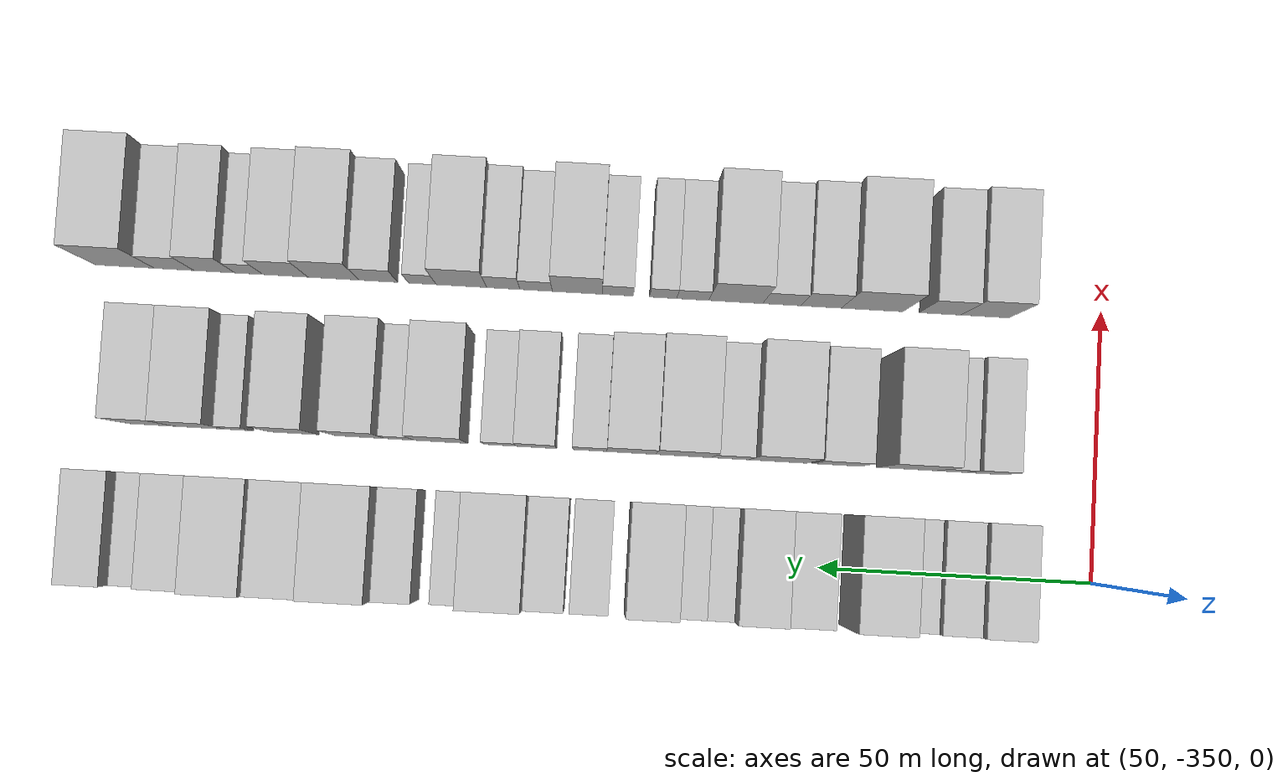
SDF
<sdf version="1.6">
 <world name="default">
  <model name="building_1">
   <static>1</static>
   <pose>50.0000 -331.6268 0 0.000000 0.000000 0.000000</pose>
   <link name="link">
    <pose>0 0 9.00 0 0 0</pose>
    <collision name="collision"><geometry><box><size>20.0000 8.7465 18.0000</size></box></geometry></collision>
    <visual name="visual">
     <cast_shadows>0</cast_shadows>
     <geometry><box><size>20.0000 8.7465 18.0000</size></box></geometry>
     <material>
      <script>
       <uri>model://HANNAS_wall/materials/scripts</uri>
       <uri>model://HANNAS_wall/materials/textures</uri>
       <name>vrc/HANNAS_wall</name>
      </script>
     </material>
    </visual>
   </link>
  </model>
  <model name="building_2">
   <static>1</static>
   <pose>50.0000 -323.7669 0 0.000000 0.000000 0.000000</pose>
   <link name="link">
    <pose>0 0 7.50 0 0 0</pose>
    <collision name="collision"><geometry><box><size>20.0000 6.9732 15.0000</size></box></geometry></collision>
    <visual name="visual">
     <cast_shadows>0</cast_shadows>
     <geometry><box><size>20.0000 6.9732 15.0000</size></box></geometry>
     <material>
      <script>
       <uri>model://HANNAS_wall/materials/scripts</uri>
       <uri>model://HANNAS_wall/materials/textures</uri>
       <name>vrc/HANNAS_wall</name>
      </script>
     </material>
    </visual>
   </link>
  </model>
  <model name="building_3">
   <static>1</static>
   <pose>50.0000 -317.8753 0 0.000000 0.000000 0.000000</pose>
   <link name="link">
    <pose>0 0 6.00 0 0 0</pose>
    <collision name="collision"><geometry><box><size>20.0000 4.8100 12.0000</size></box></geometry></collision>
    <visual name="visual">
     <cast_shadows>0</cast_shadows>
     <geometry><box><size>20.0000 4.8100 12.0000</size></box></geometry>
     <material>
      <script>
       <uri>model://HANNAS_wall/materials/scripts</uri>
       <uri>model://HANNAS_wall/materials/textures</uri>
       <name>vrc/HANNAS_wall</name>
      </script>
     </material>
    </visual>
   </link>
  </model>
  <model name="building_4">
   <static>1</static>
   <pose>50.0000 -309.3967 0 0.000000 0.000000 0.000000</pose>
   <link name="link">
    <pose>0 0 12.00 0 0 0</pose>
    <collision name="collision"><geometry><box><size>20.0000 10.1470 24.0000</size></box></geometry></collision>
    <visual name="visual">
     <cast_shadows>0</cast_shadows>
     <geometry><box><size>20.0000 10.1470 24.0000</size></box></geometry>
     <material>
      <script>
       <uri>model://HANNAS_wall/materials/scripts</uri>
       <uri>model://HANNAS_wall/materials/textures</uri>
       <name>vrc/HANNAS_wall</name>
      </script>
     </material>
    </visual>
   </link>
  </model>
  <model name="building_5">
   <static>1</static>
   <pose>50.0000 -297.1925 0 0.000000 0.000000 0.000000</pose>
   <link name="link">
    <pose>0 0 9.00 0 0 0</pose>
    <collision name="collision"><geometry><box><size>20.0000 8.2614 18.0000</size></box></geometry></collision>
    <visual name="visual">
     <cast_shadows>0</cast_shadows>
     <geometry><box><size>20.0000 8.2614 18.0000</size></box></geometry>
     <material>
      <script>
       <uri>model://HANNAS_wall/materials/scripts</uri>
       <uri>model://HANNAS_wall/materials/textures</uri>
       <name>vrc/HANNAS_wall</name>
      </script>
     </material>
    </visual>
   </link>
  </model>
  <model name="building_6">
   <static>1</static>
   <pose>50.0000 -288.6831 0 0.000000 0.000000 0.000000</pose>
   <link name="link">
    <pose>0 0 10.50 0 0 0</pose>
    <collision name="collision"><geometry><box><size>20.0000 8.7574 21.0000</size></box></geometry></collision>
    <visual name="visual">
     <cast_shadows>0</cast_shadows>
     <geometry><box><size>20.0000 8.7574 21.0000</size></box></geometry>
     <material>
      <script>
       <uri>model://HANNAS_wall/materials/scripts</uri>
       <uri>model://HANNAS_wall/materials/textures</uri>
       <name>vrc/HANNAS_wall</name>
      </script>
     </material>
    </visual>
   </link>
  </model>
  <model name="building_7">
   <static>1</static>
   <pose>50.0000 -281.9020 0 0.000000 0.000000 0.000000</pose>
   <link name="link">
    <pose>0 0 6.00 0 0 0</pose>
    <collision name="collision"><geometry><box><size>20.0000 4.8047 12.0000</size></box></geometry></collision>
    <visual name="visual">
     <cast_shadows>0</cast_shadows>
     <geometry><box><size>20.0000 4.8047 12.0000</size></box></geometry>
     <material>
      <script>
       <uri>model://HANNAS_wall/materials/scripts</uri>
       <uri>model://HANNAS_wall/materials/textures</uri>
       <name>vrc/HANNAS_wall</name>
      </script>
     </material>
    </visual>
   </link>
  </model>
  <model name="building_8">
   <static>1</static>
   <pose>50.0000 -276.8866 0 0.000000 0.000000 0.000000</pose>
   <link name="link">
    <pose>0 0 6.00 0 0 0</pose>
    <collision name="collision"><geometry><box><size>20.0000 5.2261 12.0000</size></box></geometry></collision>
    <visual name="visual">
     <cast_shadows>0</cast_shadows>
     <geometry><box><size>20.0000 5.2261 12.0000</size></box></geometry>
     <material>
      <script>
       <uri>model://HANNAS_wall/materials/scripts</uri>
       <uri>model://HANNAS_wall/materials/textures</uri>
       <name>vrc/HANNAS_wall</name>
      </script>
     </material>
    </visual>
   </link>
  </model>
  <model name="building_9">
   <static>1</static>
   <pose>50.0000 -269.6459 0 0.000000 0.000000 0.000000</pose>
   <link name="link">
    <pose>0 0 10.50 0 0 0</pose>
    <collision name="collision"><geometry><box><size>20.0000 9.2554 21.0000</size></box></geometry></collision>
    <visual name="visual">
     <cast_shadows>0</cast_shadows>
     <geometry><box><size>20.0000 9.2554 21.0000</size></box></geometry>
     <material>
      <script>
       <uri>model://HANNAS_wall/materials/scripts</uri>
       <uri>model://HANNAS_wall/materials/textures</uri>
       <name>vrc/HANNAS_wall</name>
      </script>
     </material>
    </visual>
   </link>
  </model>
  <model name="building_10">
   <static>1</static>
   <pose>50.0000 -258.6013 0 0.000000 0.000000 0.000000</pose>
   <link name="link">
    <pose>0 0 7.50 0 0 0</pose>
    <collision name="collision"><geometry><box><size>20.0000 6.8338 15.0000</size></box></geometry></collision>
    <visual name="visual">
     <cast_shadows>0</cast_shadows>
     <geometry><box><size>20.0000 6.8338 15.0000</size></box></geometry>
     <material>
      <script>
       <uri>model://HANNAS_wall/materials/scripts</uri>
       <uri>model://HANNAS_wall/materials/textures</uri>
       <name>vrc/HANNAS_wall</name>
      </script>
     </material>
    </visual>
   </link>
  </model>
  <model name="building_11">
   <static>1</static>
   <pose>50.0000 -250.5868 0 0.000000 0.000000 0.000000</pose>
   <link name="link">
    <pose>0 0 7.50 0 0 0</pose>
    <collision name="collision"><geometry><box><size>20.0000 7.1953 15.0000</size></box></geometry></collision>
    <visual name="visual">
     <cast_shadows>0</cast_shadows>
     <geometry><box><size>20.0000 7.1953 15.0000</size></box></geometry>
     <material>
      <script>
       <uri>model://HANNAS_wall/materials/scripts</uri>
       <uri>model://HANNAS_wall/materials/textures</uri>
       <name>vrc/HANNAS_wall</name>
      </script>
     </material>
    </visual>
   </link>
  </model>
  <model name="building_12">
   <static>1</static>
   <pose>50.0000 -241.3926 0 0.000000 0.000000 0.000000</pose>
   <link name="link">
    <pose>0 0 12.00 0 0 0</pose>
    <collision name="collision"><geometry><box><size>20.0000 11.1932 24.0000</size></box></geometry></collision>
    <visual name="visual">
     <cast_shadows>0</cast_shadows>
     <geometry><box><size>20.0000 11.1932 24.0000</size></box></geometry>
     <material>
      <script>
       <uri>model://HANNAS_wall/materials/scripts</uri>
       <uri>model://HANNAS_wall/materials/textures</uri>
       <name>vrc/HANNAS_wall</name>
      </script>
     </material>
    </visual>
   </link>
  </model>
  <model name="building_13">
   <static>1</static>
   <pose>50.0000 -233.1363 0 0.000000 0.000000 0.000000</pose>
   <link name="link">
    <pose>0 0 6.00 0 0 0</pose>
    <collision name="collision"><geometry><box><size>20.0000 5.3193 12.0000</size></box></geometry></collision>
    <visual name="visual">
     <cast_shadows>0</cast_shadows>
     <geometry><box><size>20.0000 5.3193 12.0000</size></box></geometry>
     <material>
      <script>
       <uri>model://HANNAS_wall/materials/scripts</uri>
       <uri>model://HANNAS_wall/materials/textures</uri>
       <name>vrc/HANNAS_wall</name>
      </script>
     </material>
    </visual>
   </link>
  </model>
  <model name="building_14">
   <static>1</static>
   <pose>50.0000 -223.9610 0 0.000000 0.000000 0.000000</pose>
   <link name="link">
    <pose>0 0 7.50 0 0 0</pose>
    <collision name="collision"><geometry><box><size>20.0000 7.0312 15.0000</size></box></geometry></collision>
    <visual name="visual">
     <cast_shadows>0</cast_shadows>
     <geometry><box><size>20.0000 7.0312 15.0000</size></box></geometry>
     <material>
      <script>
       <uri>model://HANNAS_wall/materials/scripts</uri>
       <uri>model://HANNAS_wall/materials/textures</uri>
       <name>vrc/HANNAS_wall</name>
      </script>
     </material>
    </visual>
   </link>
  </model>
  <model name="building_15">
   <static>1</static>
   <pose>50.0000 -214.6187 0 0.000000 0.000000 0.000000</pose>
   <link name="link">
    <pose>0 0 12.00 0 0 0</pose>
    <collision name="collision"><geometry><box><size>20.0000 11.6534 24.0000</size></box></geometry></collision>
    <visual name="visual">
     <cast_shadows>0</cast_shadows>
     <geometry><box><size>20.0000 11.6534 24.0000</size></box></geometry>
     <material>
      <script>
       <uri>model://HANNAS_wall/materials/scripts</uri>
       <uri>model://HANNAS_wall/materials/textures</uri>
       <name>vrc/HANNAS_wall</name>
      </script>
     </material>
    </visual>
   </link>
  </model>
  <model name="building_16">
   <static>1</static>
   <pose>50.0000 -204.0040 0 0.000000 0.000000 0.000000</pose>
   <link name="link">
    <pose>0 0 10.50 0 0 0</pose>
    <collision name="collision"><geometry><box><size>20.0000 9.5760 21.0000</size></box></geometry></collision>
    <visual name="visual">
     <cast_shadows>0</cast_shadows>
     <geometry><box><size>20.0000 9.5760 21.0000</size></box></geometry>
     <material>
      <script>
       <uri>model://HANNAS_wall/materials/scripts</uri>
       <uri>model://HANNAS_wall/materials/textures</uri>
       <name>vrc/HANNAS_wall</name>
      </script>
     </material>
    </visual>
   </link>
  </model>
  <model name="building_17">
   <static>1</static>
   <pose>50.0000 -194.0085 0 0.000000 0.000000 0.000000</pose>
   <link name="link">
    <pose>0 0 12.00 0 0 0</pose>
    <collision name="collision"><geometry><box><size>20.0000 10.4152 24.0000</size></box></geometry></collision>
    <visual name="visual">
     <cast_shadows>0</cast_shadows>
     <geometry><box><size>20.0000 10.4152 24.0000</size></box></geometry>
     <material>
      <script>
       <uri>model://HANNAS_wall/materials/scripts</uri>
       <uri>model://HANNAS_wall/materials/textures</uri>
       <name>vrc/HANNAS_wall</name>
      </script>
     </material>
    </visual>
   </link>
  </model>
  <model name="building_18">
   <static>1</static>
   <pose>50.0000 -183.7888 0 0.000000 0.000000 0.000000</pose>
   <link name="link">
    <pose>0 0 9.00 0 0 0</pose>
    <collision name="collision"><geometry><box><size>20.0000 8.0241 18.0000</size></box></geometry></collision>
    <visual name="visual">
     <cast_shadows>0</cast_shadows>
     <geometry><box><size>20.0000 8.0241 18.0000</size></box></geometry>
     <material>
      <script>
       <uri>model://HANNAS_wall/materials/scripts</uri>
       <uri>model://HANNAS_wall/materials/textures</uri>
       <name>vrc/HANNAS_wall</name>
      </script>
     </material>
    </visual>
   </link>
  </model>
  <model name="building_19">
   <static>1</static>
   <pose>50.0000 -176.8450 0 0.000000 0.000000 0.000000</pose>
   <link name="link">
    <pose>0 0 6.00 0 0 0</pose>
    <collision name="collision"><geometry><box><size>20.0000 5.8635 12.0000</size></box></geometry></collision>
    <visual name="visual">
     <cast_shadows>0</cast_shadows>
     <geometry><box><size>20.0000 5.8635 12.0000</size></box></geometry>
     <material>
      <script>
       <uri>model://HANNAS_wall/materials/scripts</uri>
       <uri>model://HANNAS_wall/materials/textures</uri>
       <name>vrc/HANNAS_wall</name>
      </script>
     </material>
    </visual>
   </link>
  </model>
  <model name="building_20">
   <static>1</static>
   <pose>50.0000 -169.9643 0 0.000000 0.000000 0.000000</pose>
   <link name="link">
    <pose>0 0 9.00 0 0 0</pose>
    <collision name="collision"><geometry><box><size>20.0000 7.8979 18.0000</size></box></geometry></collision>
    <visual name="visual">
     <cast_shadows>0</cast_shadows>
     <geometry><box><size>20.0000 7.8979 18.0000</size></box></geometry>
     <material>
      <script>
       <uri>model://HANNAS_wall/materials/scripts</uri>
       <uri>model://HANNAS_wall/materials/textures</uri>
       <name>vrc/HANNAS_wall</name>
      </script>
     </material>
    </visual>
   </link>
  </model>
  <model name="building_78">
   <static>1</static>
   <pose>79.0000 -329.5668 0 0.000000 0.000000 0.000000</pose>
   <link name="link">
    <pose>0 0 7.50 0 0 0</pose>
    <collision name="collision"><geometry><box><size>20.0000 6.8664 15.0000</size></box></geometry></collision>
    <visual name="visual">
     <cast_shadows>0</cast_shadows>
     <geometry><box><size>20.0000 6.8664 15.0000</size></box></geometry>
     <material>
      <script>
       <uri>model://HANNAS_wall/materials/scripts</uri>
       <uri>model://HANNAS_wall/materials/textures</uri>
       <name>vrc/HANNAS_wall</name>
      </script>
     </material>
    </visual>
   </link>
  </model>
  <model name="building_79">
   <static>1</static>
   <pose>79.0000 -323.4280 0 0.000000 0.000000 0.000000</pose>
   <link name="link">
    <pose>0 0 6.00 0 0 0</pose>
    <collision name="collision"><geometry><box><size>20.0000 5.4112 12.0000</size></box></geometry></collision>
    <visual name="visual">
     <cast_shadows>0</cast_shadows>
     <geometry><box><size>20.0000 5.4112 12.0000</size></box></geometry>
     <material>
      <script>
       <uri>model://HANNAS_wall/materials/scripts</uri>
       <uri>model://HANNAS_wall/materials/textures</uri>
       <name>vrc/HANNAS_wall</name>
      </script>
     </material>
    </visual>
   </link>
  </model>
  <model name="building_80">
   <static>1</static>
   <pose>79.0000 -315.2434 0 0.000000 0.000000 0.000000</pose>
   <link name="link">
    <pose>0 0 12.00 0 0 0</pose>
    <collision name="collision"><geometry><box><size>20.0000 10.9579 24.0000</size></box></geometry></collision>
    <visual name="visual">
     <cast_shadows>0</cast_shadows>
     <geometry><box><size>20.0000 10.9579 24.0000</size></box></geometry>
     <material>
      <script>
       <uri>model://HANNAS_wall/materials/scripts</uri>
       <uri>model://HANNAS_wall/materials/textures</uri>
       <name>vrc/HANNAS_wall</name>
      </script>
     </material>
    </visual>
   </link>
  </model>
  <model name="building_81">
   <static>1</static>
   <pose>79.0000 -302.3818 0 0.000000 0.000000 0.000000</pose>
   <link name="link">
    <pose>0 0 9.00 0 0 0</pose>
    <collision name="collision"><geometry><box><size>20.0000 8.7654 18.0000</size></box></geometry></collision>
    <visual name="visual">
     <cast_shadows>0</cast_shadows>
     <geometry><box><size>20.0000 8.7654 18.0000</size></box></geometry>
     <material>
      <script>
       <uri>model://HANNAS_wall/materials/scripts</uri>
       <uri>model://HANNAS_wall/materials/textures</uri>
       <name>vrc/HANNAS_wall</name>
      </script>
     </material>
    </visual>
   </link>
  </model>
  <model name="building_82">
   <static>1</static>
   <pose>79.0000 -291.6506 0 0.000000 0.000000 0.000000</pose>
   <link name="link">
    <pose>0 0 12.00 0 0 0</pose>
    <collision name="collision"><geometry><box><size>20.0000 10.6968 24.0000</size></box></geometry></collision>
    <visual name="visual">
     <cast_shadows>0</cast_shadows>
     <geometry><box><size>20.0000 10.6968 24.0000</size></box></geometry>
     <material>
      <script>
       <uri>model://HANNAS_wall/materials/scripts</uri>
       <uri>model://HANNAS_wall/materials/textures</uri>
       <name>vrc/HANNAS_wall</name>
      </script>
     </material>
    </visual>
   </link>
  </model>
  <model name="building_83">
   <static>1</static>
   <pose>79.0000 -282.8575 0 0.000000 0.000000 0.000000</pose>
   <link name="link">
    <pose>0 0 7.50 0 0 0</pose>
    <collision name="collision"><geometry><box><size>20.0000 6.8894 15.0000</size></box></geometry></collision>
    <visual name="visual">
     <cast_shadows>0</cast_shadows>
     <geometry><box><size>20.0000 6.8894 15.0000</size></box></geometry>
     <material>
      <script>
       <uri>model://HANNAS_wall/materials/scripts</uri>
       <uri>model://HANNAS_wall/materials/textures</uri>
       <name>vrc/HANNAS_wall</name>
      </script>
     </material>
    </visual>
   </link>
  </model>
  <model name="building_84">
   <static>1</static>
   <pose>79.0000 -274.2752 0 0.000000 0.000000 0.000000</pose>
   <link name="link">
    <pose>0 0 12.00 0 0 0</pose>
    <collision name="collision"><geometry><box><size>20.0000 10.2752 24.0000</size></box></geometry></collision>
    <visual name="visual">
     <cast_shadows>0</cast_shadows>
     <geometry><box><size>20.0000 10.2752 24.0000</size></box></geometry>
     <material>
      <script>
       <uri>model://HANNAS_wall/materials/scripts</uri>
       <uri>model://HANNAS_wall/materials/textures</uri>
       <name>vrc/HANNAS_wall</name>
      </script>
     </material>
    </visual>
   </link>
  </model>
  <model name="building_85">
   <static>1</static>
   <pose>79.0000 -264.6732 0 0.000000 0.000000 0.000000</pose>
   <link name="link">
    <pose>0 0 10.50 0 0 0</pose>
    <collision name="collision"><geometry><box><size>20.0000 8.9286 21.0000</size></box></geometry></collision>
    <visual name="visual">
     <cast_shadows>0</cast_shadows>
     <geometry><box><size>20.0000 8.9286 21.0000</size></box></geometry>
     <material>
      <script>
       <uri>model://HANNAS_wall/materials/scripts</uri>
       <uri>model://HANNAS_wall/materials/textures</uri>
       <name>vrc/HANNAS_wall</name>
      </script>
     </material>
    </visual>
   </link>
  </model>
  <model name="building_86">
   <static>1</static>
   <pose>79.0000 -257.1080 0 0.000000 0.000000 0.000000</pose>
   <link name="link">
    <pose>0 0 7.50 0 0 0</pose>
    <collision name="collision"><geometry><box><size>20.0000 6.2018 15.0000</size></box></geometry></collision>
    <visual name="visual">
     <cast_shadows>0</cast_shadows>
     <geometry><box><size>20.0000 6.2018 15.0000</size></box></geometry>
     <material>
      <script>
       <uri>model://HANNAS_wall/materials/scripts</uri>
       <uri>model://HANNAS_wall/materials/textures</uri>
       <name>vrc/HANNAS_wall</name>
      </script>
     </material>
    </visual>
   </link>
  </model>
  <model name="building_87">
   <static>1</static>
   <pose>79.0000 -247.3240 0 0.000000 0.000000 0.000000</pose>
   <link name="link">
    <pose>0 0 7.50 0 0 0</pose>
    <collision name="collision"><geometry><box><size>20.0000 7.3662 15.0000</size></box></geometry></collision>
    <visual name="visual">
     <cast_shadows>0</cast_shadows>
     <geometry><box><size>20.0000 7.3662 15.0000</size></box></geometry>
     <material>
      <script>
       <uri>model://HANNAS_wall/materials/scripts</uri>
       <uri>model://HANNAS_wall/materials/textures</uri>
       <name>vrc/HANNAS_wall</name>
      </script>
     </material>
    </visual>
   </link>
  </model>
  <model name="building_88">
   <static>1</static>
   <pose>79.0000 -240.6710 0 0.000000 0.000000 0.000000</pose>
   <link name="link">
    <pose>0 0 6.00 0 0 0</pose>
    <collision name="collision"><geometry><box><size>20.0000 5.9400 12.0000</size></box></geometry></collision>
    <visual name="visual">
     <cast_shadows>0</cast_shadows>
     <geometry><box><size>20.0000 5.9400 12.0000</size></box></geometry>
     <material>
      <script>
       <uri>model://HANNAS_wall/materials/scripts</uri>
       <uri>model://HANNAS_wall/materials/textures</uri>
       <name>vrc/HANNAS_wall</name>
      </script>
     </material>
    </visual>
   </link>
  </model>
  <model name="building_89">
   <static>1</static>
   <pose>79.0000 -229.8145 0 0.000000 0.000000 0.000000</pose>
   <link name="link">
    <pose>0 0 10.50 0 0 0</pose>
    <collision name="collision"><geometry><box><size>20.0000 9.7729 21.0000</size></box></geometry></collision>
    <visual name="visual">
     <cast_shadows>0</cast_shadows>
     <geometry><box><size>20.0000 9.7729 21.0000</size></box></geometry>
     <material>
      <script>
       <uri>model://HANNAS_wall/materials/scripts</uri>
       <uri>model://HANNAS_wall/materials/textures</uri>
       <name>vrc/HANNAS_wall</name>
      </script>
     </material>
    </visual>
   </link>
  </model>
  <model name="building_90">
   <static>1</static>
   <pose>79.0000 -222.2005 0 0.000000 0.000000 0.000000</pose>
   <link name="link">
    <pose>0 0 6.00 0 0 0</pose>
    <collision name="collision"><geometry><box><size>20.0000 5.4551 12.0000</size></box></geometry></collision>
    <visual name="visual">
     <cast_shadows>0</cast_shadows>
     <geometry><box><size>20.0000 5.4551 12.0000</size></box></geometry>
     <material>
      <script>
       <uri>model://HANNAS_wall/materials/scripts</uri>
       <uri>model://HANNAS_wall/materials/textures</uri>
       <name>vrc/HANNAS_wall</name>
      </script>
     </material>
    </visual>
   </link>
  </model>
  <model name="building_91">
   <static>1</static>
   <pose>79.0000 -214.8779 0 0.000000 0.000000 0.000000</pose>
   <link name="link">
    <pose>0 0 10.50 0 0 0</pose>
    <collision name="collision"><geometry><box><size>20.0000 9.1901 21.0000</size></box></geometry></collision>
    <visual name="visual">
     <cast_shadows>0</cast_shadows>
     <geometry><box><size>20.0000 9.1901 21.0000</size></box></geometry>
     <material>
      <script>
       <uri>model://HANNAS_wall/materials/scripts</uri>
       <uri>model://HANNAS_wall/materials/textures</uri>
       <name>vrc/HANNAS_wall</name>
      </script>
     </material>
    </visual>
   </link>
  </model>
  <model name="building_92">
   <static>1</static>
   <pose>79.0000 -202.7307 0 0.000000 0.000000 0.000000</pose>
   <link name="link">
    <pose>0 0 10.50 0 0 0</pose>
    <collision name="collision"><geometry><box><size>20.0000 9.1043 21.0000</size></box></geometry></collision>
    <visual name="visual">
     <cast_shadows>0</cast_shadows>
     <geometry><box><size>20.0000 9.1043 21.0000</size></box></geometry>
     <material>
      <script>
       <uri>model://HANNAS_wall/materials/scripts</uri>
       <uri>model://HANNAS_wall/materials/textures</uri>
       <name>vrc/HANNAS_wall</name>
      </script>
     </material>
    </visual>
   </link>
  </model>
  <model name="building_93">
   <static>1</static>
   <pose>79.0000 -192.7432 0 0.000000 0.000000 0.000000</pose>
   <link name="link">
    <pose>0 0 6.00 0 0 0</pose>
    <collision name="collision"><geometry><box><size>20.0000 4.8708 12.0000</size></box></geometry></collision>
    <visual name="visual">
     <cast_shadows>0</cast_shadows>
     <geometry><box><size>20.0000 4.8708 12.0000</size></box></geometry>
     <material>
      <script>
       <uri>model://HANNAS_wall/materials/scripts</uri>
       <uri>model://HANNAS_wall/materials/textures</uri>
       <name>vrc/HANNAS_wall</name>
      </script>
     </material>
    </visual>
   </link>
  </model>
  <model name="building_94">
   <static>1</static>
   <pose>79.0000 -185.5527 0 0.000000 0.000000 0.000000</pose>
   <link name="link">
    <pose>0 0 10.50 0 0 0</pose>
    <collision name="collision"><geometry><box><size>20.0000 9.5102 21.0000</size></box></geometry></collision>
    <visual name="visual">
     <cast_shadows>0</cast_shadows>
     <geometry><box><size>20.0000 9.5102 21.0000</size></box></geometry>
     <material>
      <script>
       <uri>model://HANNAS_wall/materials/scripts</uri>
       <uri>model://HANNAS_wall/materials/textures</uri>
       <name>vrc/HANNAS_wall</name>
      </script>
     </material>
    </visual>
   </link>
  </model>
  <model name="building_95">
   <static>1</static>
   <pose>79.0000 -176.4970 0 0.000000 0.000000 0.000000</pose>
   <link name="link">
    <pose>0 0 10.50 0 0 0</pose>
    <collision name="collision"><geometry><box><size>20.0000 8.6012 21.0000</size></box></geometry></collision>
    <visual name="visual">
     <cast_shadows>0</cast_shadows>
     <geometry><box><size>20.0000 8.6012 21.0000</size></box></geometry>
     <material>
      <script>
       <uri>model://HANNAS_wall/materials/scripts</uri>
       <uri>model://HANNAS_wall/materials/textures</uri>
       <name>vrc/HANNAS_wall</name>
      </script>
     </material>
    </visual>
   </link>
  </model>
  <model name="building_154">
   <static>1</static>
   <pose>108.0000 -328.5425 0 0.000000 0.000000 0.000000</pose>
   <link name="link">
    <pose>0 0 10.50 0 0 0</pose>
    <collision name="collision"><geometry><box><size>20.0000 8.9149 21.0000</size></box></geometry></collision>
    <visual name="visual">
     <cast_shadows>0</cast_shadows>
     <geometry><box><size>20.0000 8.9149 21.0000</size></box></geometry>
     <material>
      <script>
       <uri>model://HANNAS_wall/materials/scripts</uri>
       <uri>model://HANNAS_wall/materials/textures</uri>
       <name>vrc/HANNAS_wall</name>
      </script>
     </material>
    </visual>
   </link>
  </model>
  <model name="building_155">
   <static>1</static>
   <pose>108.0000 -320.2434 0 0.000000 0.000000 0.000000</pose>
   <link name="link">
    <pose>0 0 9.00 0 0 0</pose>
    <collision name="collision"><geometry><box><size>20.0000 7.6833 18.0000</size></box></geometry></collision>
    <visual name="visual">
     <cast_shadows>0</cast_shadows>
     <geometry><box><size>20.0000 7.6833 18.0000</size></box></geometry>
     <material>
      <script>
       <uri>model://HANNAS_wall/materials/scripts</uri>
       <uri>model://HANNAS_wall/materials/textures</uri>
       <name>vrc/HANNAS_wall</name>
      </script>
     </material>
    </visual>
   </link>
  </model>
  <model name="building_156">
   <static>1</static>
   <pose>108.0000 -307.6872 0 0.000000 0.000000 0.000000</pose>
   <link name="link">
    <pose>0 0 12.00 0 0 0</pose>
    <collision name="collision"><geometry><box><size>20.0000 11.4290 24.0000</size></box></geometry></collision>
    <visual name="visual">
     <cast_shadows>0</cast_shadows>
     <geometry><box><size>20.0000 11.4290 24.0000</size></box></geometry>
     <material>
      <script>
       <uri>model://HANNAS_wall/materials/scripts</uri>
       <uri>model://HANNAS_wall/materials/textures</uri>
       <name>vrc/HANNAS_wall</name>
      </script>
     </material>
    </visual>
   </link>
  </model>
  <model name="building_157">
   <static>1</static>
   <pose>108.0000 -298.1848 0 0.000000 0.000000 0.000000</pose>
   <link name="link">
    <pose>0 0 9.00 0 0 0</pose>
    <collision name="collision"><geometry><box><size>20.0000 7.5759 18.0000</size></box></geometry></collision>
    <visual name="visual">
     <cast_shadows>0</cast_shadows>
     <geometry><box><size>20.0000 7.5759 18.0000</size></box></geometry>
     <material>
      <script>
       <uri>model://HANNAS_wall/materials/scripts</uri>
       <uri>model://HANNAS_wall/materials/textures</uri>
       <name>vrc/HANNAS_wall</name>
      </script>
     </material>
    </visual>
   </link>
  </model>
  <model name="building_158">
   <static>1</static>
   <pose>108.0000 -290.8960 0 0.000000 0.000000 0.000000</pose>
   <link name="link">
    <pose>0 0 7.50 0 0 0</pose>
    <collision name="collision"><geometry><box><size>20.0000 7.0016 15.0000</size></box></geometry></collision>
    <visual name="visual">
     <cast_shadows>0</cast_shadows>
     <geometry><box><size>20.0000 7.0016 15.0000</size></box></geometry>
     <material>
      <script>
       <uri>model://HANNAS_wall/materials/scripts</uri>
       <uri>model://HANNAS_wall/materials/textures</uri>
       <name>vrc/HANNAS_wall</name>
      </script>
     </material>
    </visual>
   </link>
  </model>
  <model name="building_159">
   <static>1</static>
   <pose>108.0000 -282.3847 0 0.000000 0.000000 0.000000</pose>
   <link name="link">
    <pose>0 0 12.00 0 0 0</pose>
    <collision name="collision"><geometry><box><size>20.0000 10.0210 24.0000</size></box></geometry></collision>
    <visual name="visual">
     <cast_shadows>0</cast_shadows>
     <geometry><box><size>20.0000 10.0210 24.0000</size></box></geometry>
     <material>
      <script>
       <uri>model://HANNAS_wall/materials/scripts</uri>
       <uri>model://HANNAS_wall/materials/textures</uri>
       <name>vrc/HANNAS_wall</name>
      </script>
     </material>
    </visual>
   </link>
  </model>
  <model name="building_160">
   <static>1</static>
   <pose>108.0000 -274.4052 0 0.000000 0.000000 0.000000</pose>
   <link name="link">
    <pose>0 0 6.00 0 0 0</pose>
    <collision name="collision"><geometry><box><size>20.0000 5.9381 12.0000</size></box></geometry></collision>
    <visual name="visual">
     <cast_shadows>0</cast_shadows>
     <geometry><box><size>20.0000 5.9381 12.0000</size></box></geometry>
     <material>
      <script>
       <uri>model://HANNAS_wall/materials/scripts</uri>
       <uri>model://HANNAS_wall/materials/textures</uri>
       <name>vrc/HANNAS_wall</name>
      </script>
     </material>
    </visual>
   </link>
  </model>
  <model name="building_161">
   <static>1</static>
   <pose>108.0000 -268.9296 0 0.000000 0.000000 0.000000</pose>
   <link name="link">
    <pose>0 0 6.00 0 0 0</pose>
    <collision name="collision"><geometry><box><size>20.0000 5.0131 12.0000</size></box></geometry></collision>
    <visual name="visual">
     <cast_shadows>0</cast_shadows>
     <geometry><box><size>20.0000 5.0131 12.0000</size></box></geometry>
     <material>
      <script>
       <uri>model://HANNAS_wall/materials/scripts</uri>
       <uri>model://HANNAS_wall/materials/textures</uri>
       <name>vrc/HANNAS_wall</name>
      </script>
     </material>
    </visual>
   </link>
  </model>
  <model name="building_162">
   <static>1</static>
   <pose>108.0000 -260.5807 0 0.000000 0.000000 0.000000</pose>
   <link name="link">
    <pose>0 0 6.00 0 0 0</pose>
    <collision name="collision"><geometry><box><size>20.0000 5.6847 12.0000</size></box></geometry></collision>
    <visual name="visual">
     <cast_shadows>0</cast_shadows>
     <geometry><box><size>20.0000 5.6847 12.0000</size></box></geometry>
     <material>
      <script>
       <uri>model://HANNAS_wall/materials/scripts</uri>
       <uri>model://HANNAS_wall/materials/textures</uri>
       <name>vrc/HANNAS_wall</name>
      </script>
     </material>
    </visual>
   </link>
  </model>
  <model name="building_163">
   <static>1</static>
   <pose>108.0000 -253.0854 0 0.000000 0.000000 0.000000</pose>
   <link name="link">
    <pose>0 0 10.50 0 0 0</pose>
    <collision name="collision"><geometry><box><size>20.0000 9.3058 21.0000</size></box></geometry></collision>
    <visual name="visual">
     <cast_shadows>0</cast_shadows>
     <geometry><box><size>20.0000 9.3058 21.0000</size></box></geometry>
     <material>
      <script>
       <uri>model://HANNAS_wall/materials/scripts</uri>
       <uri>model://HANNAS_wall/materials/textures</uri>
       <name>vrc/HANNAS_wall</name>
      </script>
     </material>
    </visual>
   </link>
  </model>
  <model name="building_164">
   <static>1</static>
   <pose>108.0000 -245.4428 0 0.000000 0.000000 0.000000</pose>
   <link name="link">
    <pose>0 0 6.00 0 0 0</pose>
    <collision name="collision"><geometry><box><size>20.0000 5.9792 12.0000</size></box></geometry></collision>
    <visual name="visual">
     <cast_shadows>0</cast_shadows>
     <geometry><box><size>20.0000 5.9792 12.0000</size></box></geometry>
     <material>
      <script>
       <uri>model://HANNAS_wall/materials/scripts</uri>
       <uri>model://HANNAS_wall/materials/textures</uri>
       <name>vrc/HANNAS_wall</name>
      </script>
     </material>
    </visual>
   </link>
  </model>
  <model name="building_165">
   <static>1</static>
   <pose>108.0000 -239.3814 0 0.000000 0.000000 0.000000</pose>
   <link name="link">
    <pose>0 0 7.50 0 0 0</pose>
    <collision name="collision"><geometry><box><size>20.0000 6.1436 15.0000</size></box></geometry></collision>
    <visual name="visual">
     <cast_shadows>0</cast_shadows>
     <geometry><box><size>20.0000 6.1436 15.0000</size></box></geometry>
     <material>
      <script>
       <uri>model://HANNAS_wall/materials/scripts</uri>
       <uri>model://HANNAS_wall/materials/textures</uri>
       <name>vrc/HANNAS_wall</name>
      </script>
     </material>
    </visual>
   </link>
  </model>
  <model name="building_166">
   <static>1</static>
   <pose>108.0000 -231.6222 0 0.000000 0.000000 0.000000</pose>
   <link name="link">
    <pose>0 0 10.50 0 0 0</pose>
    <collision name="collision"><geometry><box><size>20.0000 9.3748 21.0000</size></box></geometry></collision>
    <visual name="visual">
     <cast_shadows>0</cast_shadows>
     <geometry><box><size>20.0000 9.3748 21.0000</size></box></geometry>
     <material>
      <script>
       <uri>model://HANNAS_wall/materials/scripts</uri>
       <uri>model://HANNAS_wall/materials/textures</uri>
       <name>vrc/HANNAS_wall</name>
      </script>
     </material>
    </visual>
   </link>
  </model>
  <model name="building_167">
   <static>1</static>
   <pose>108.0000 -224.3708 0 0.000000 0.000000 0.000000</pose>
   <link name="link">
    <pose>0 0 6.00 0 0 0</pose>
    <collision name="collision"><geometry><box><size>20.0000 5.1281 12.0000</size></box></geometry></collision>
    <visual name="visual">
     <cast_shadows>0</cast_shadows>
     <geometry><box><size>20.0000 5.1281 12.0000</size></box></geometry>
     <material>
      <script>
       <uri>model://HANNAS_wall/materials/scripts</uri>
       <uri>model://HANNAS_wall/materials/textures</uri>
       <name>vrc/HANNAS_wall</name>
      </script>
     </material>
    </visual>
   </link>
  </model>
  <model name="building_168">
   <static>1</static>
   <pose>108.0000 -216.2364 0 0.000000 0.000000 0.000000</pose>
   <link name="link">
    <pose>0 0 7.50 0 0 0</pose>
    <collision name="collision"><geometry><box><size>20.0000 7.1407 15.0000</size></box></geometry></collision>
    <visual name="visual">
     <cast_shadows>0</cast_shadows>
     <geometry><box><size>20.0000 7.1407 15.0000</size></box></geometry>
     <material>
      <script>
       <uri>model://HANNAS_wall/materials/scripts</uri>
       <uri>model://HANNAS_wall/materials/textures</uri>
       <name>vrc/HANNAS_wall</name>
      </script>
     </material>
    </visual>
   </link>
  </model>
  <model name="building_169">
   <static>1</static>
   <pose>108.0000 -207.9038 0 0.000000 0.000000 0.000000</pose>
   <link name="link">
    <pose>0 0 10.50 0 0 0</pose>
    <collision name="collision"><geometry><box><size>20.0000 9.5244 21.0000</size></box></geometry></collision>
    <visual name="visual">
     <cast_shadows>0</cast_shadows>
     <geometry><box><size>20.0000 9.5244 21.0000</size></box></geometry>
     <material>
      <script>
       <uri>model://HANNAS_wall/materials/scripts</uri>
       <uri>model://HANNAS_wall/materials/textures</uri>
       <name>vrc/HANNAS_wall</name>
      </script>
     </material>
    </visual>
   </link>
  </model>
  <model name="building_170">
   <static>1</static>
   <pose>108.0000 -198.9573 0 0.000000 0.000000 0.000000</pose>
   <link name="link">
    <pose>0 0 9.00 0 0 0</pose>
    <collision name="collision"><geometry><box><size>20.0000 8.3686 18.0000</size></box></geometry></collision>
    <visual name="visual">
     <cast_shadows>0</cast_shadows>
     <geometry><box><size>20.0000 8.3686 18.0000</size></box></geometry>
     <material>
      <script>
       <uri>model://HANNAS_wall/materials/scripts</uri>
       <uri>model://HANNAS_wall/materials/textures</uri>
       <name>vrc/HANNAS_wall</name>
      </script>
     </material>
    </visual>
   </link>
  </model>
  <model name="building_171">
   <static>1</static>
   <pose>108.0000 -192.1809 0 0.000000 0.000000 0.000000</pose>
   <link name="link">
    <pose>0 0 6.00 0 0 0</pose>
    <collision name="collision"><geometry><box><size>20.0000 5.1842 12.0000</size></box></geometry></collision>
    <visual name="visual">
     <cast_shadows>0</cast_shadows>
     <geometry><box><size>20.0000 5.1842 12.0000</size></box></geometry>
     <material>
      <script>
       <uri>model://HANNAS_wall/materials/scripts</uri>
       <uri>model://HANNAS_wall/materials/textures</uri>
       <name>vrc/HANNAS_wall</name>
      </script>
     </material>
    </visual>
   </link>
  </model>
  <model name="building_172">
   <static>1</static>
   <pose>108.0000 -185.7948 0 0.000000 0.000000 0.000000</pose>
   <link name="link">
    <pose>0 0 9.00 0 0 0</pose>
    <collision name="collision"><geometry><box><size>20.0000 7.5878 18.0000</size></box></geometry></collision>
    <visual name="visual">
     <cast_shadows>0</cast_shadows>
     <geometry><box><size>20.0000 7.5878 18.0000</size></box></geometry>
     <material>
      <script>
       <uri>model://HANNAS_wall/materials/scripts</uri>
       <uri>model://HANNAS_wall/materials/textures</uri>
       <name>vrc/HANNAS_wall</name>
      </script>
     </material>
    </visual>
   </link>
  </model>
  <model name="building_173">
   <static>1</static>
   <pose>108.0000 -178.3177 0 0.000000 0.000000 0.000000</pose>
   <link name="link">
    <pose>0 0 7.50 0 0 0</pose>
    <collision name="collision"><geometry><box><size>20.0000 7.3664 15.0000</size></box></geometry></collision>
    <visual name="visual">
     <cast_shadows>0</cast_shadows>
     <geometry><box><size>20.0000 7.3664 15.0000</size></box></geometry>
     <material>
      <script>
       <uri>model://HANNAS_wall/materials/scripts</uri>
       <uri>model://HANNAS_wall/materials/textures</uri>
       <name>vrc/HANNAS_wall</name>
      </script>
     </material>
    </visual>
   </link>
  </model>
  <model name="building_174">
   <static>1</static>
   <pose>108.0000 -169.1698 0 0.000000 0.000000 0.000000</pose>
   <link name="link">
    <pose>0 0 12.00 0 0 0</pose>
    <collision name="collision"><geometry><box><size>20.0000 10.9293 24.0000</size></box></geometry></collision>
    <visual name="visual">
     <cast_shadows>0</cast_shadows>
     <geometry><box><size>20.0000 10.9293 24.0000</size></box></geometry>
     <material>
      <script>
       <uri>model://HANNAS_wall/materials/scripts</uri>
       <uri>model://HANNAS_wall/materials/textures</uri>
       <name>vrc/HANNAS_wall</name>
      </script>
     </material>
    </visual>
   </link>
  </model>
 </world>
</sdf>
